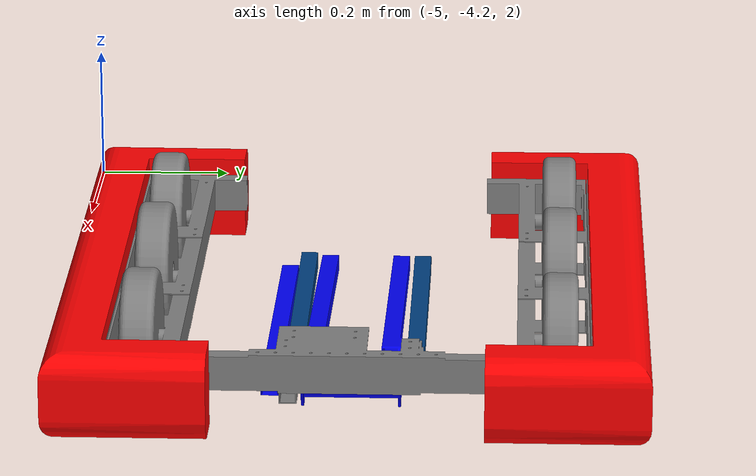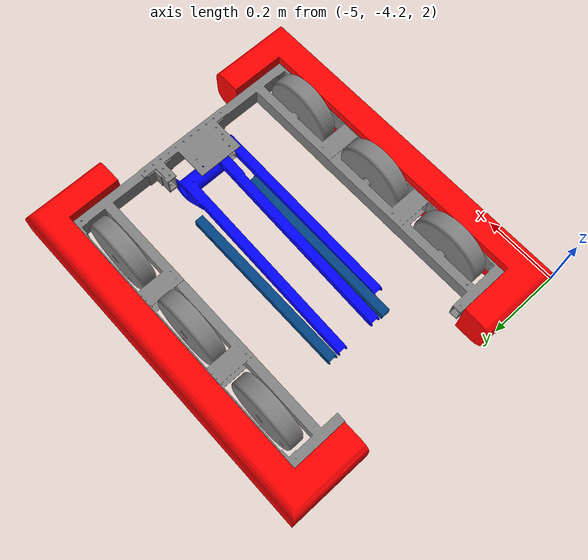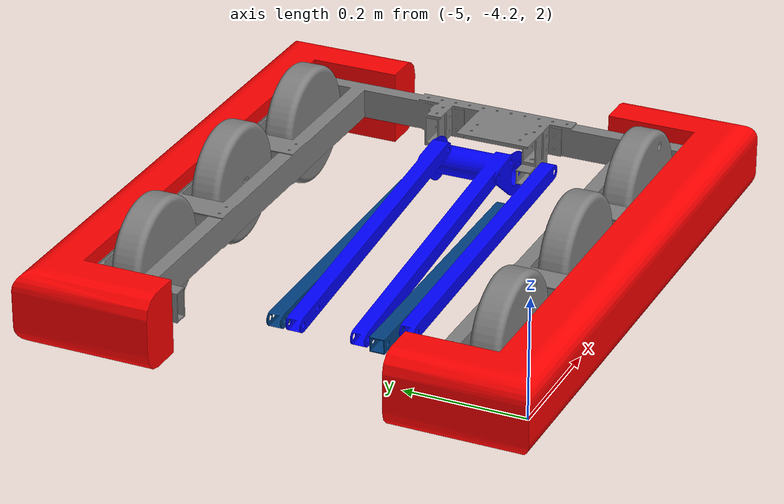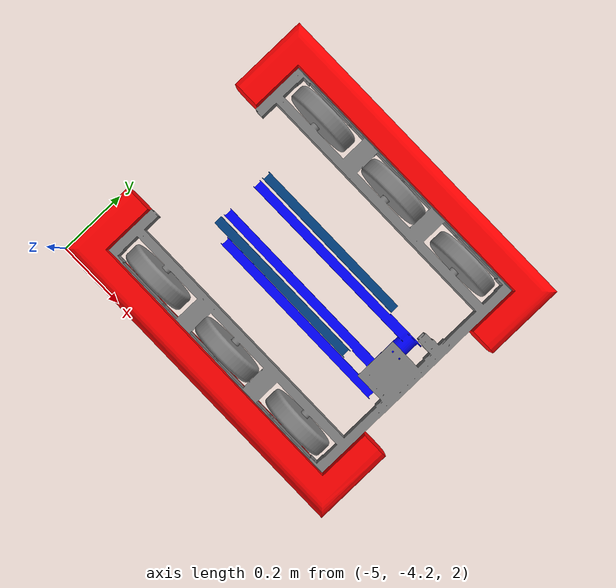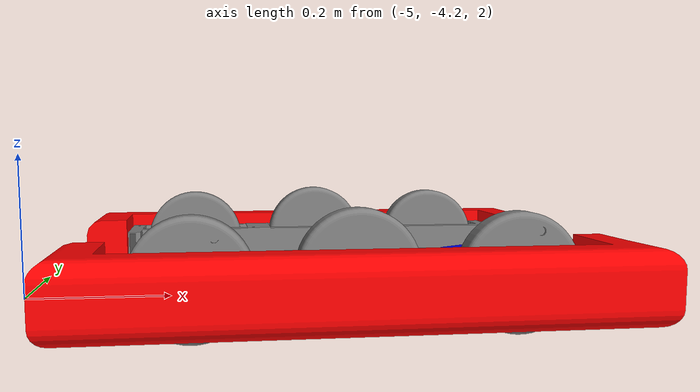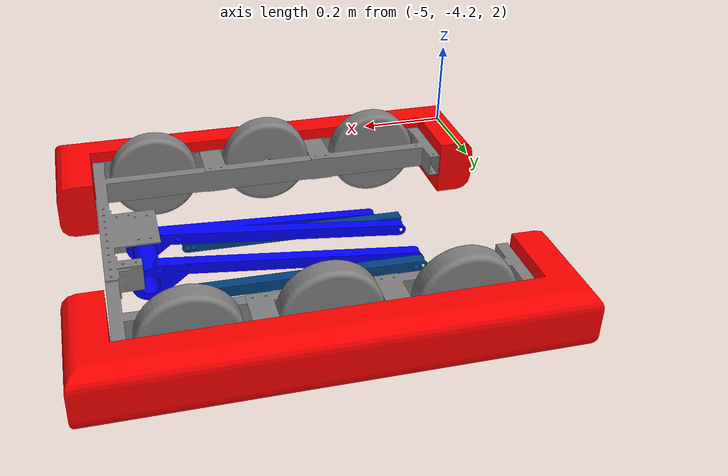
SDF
<?xml version="1.0" encoding="utf-8"?>
<sdf version="1.6">
   <model name="SimBot2019-3">
      <pose>-4.10115 -3.77117 2 0 -0 0</pose>
      <plugin name="clock" filename="libgz_clock.so">
        <topic>/gazebo/frc/time</topic>
      </plugin>
      <link name="Frame">
        <gravity>1</gravity>
        <self_collide>0</self_collide>
        <pose>-0.327678 -0.00118 0.00043 -1.5708 0 1.5708</pose>
        <must_be_base_link>1</must_be_base_link>
        <velocity_decay>
          <linear>0</linear>
          <angular>0</angular>
        </velocity_decay>
        <inertial>
          <mass>20</mass>
          <pose>0 0 0.02 0 -0 0</pose>
          <inertia>
            <ixx>0.213429</ixx>
            <ixy>1.61536e-05</ixy>
            <ixz>0.00118497</ixz>
            <iyy>0.434252</iyy>
            <iyz>0.00046367</iyz>
            <izz>0.221276</izz>
          </inertia>
        </inertial>
        <collision name="Frame_collision">
          <pose>0.00118 0.00043 0.078722 0 -0 0</pose>
          <geometry>
            <mesh>
              <scale>1 1 1</scale>
              <uri>model://SimBot2019-3/meshes/Frame_col.STL</uri>
            </mesh>
          </geometry>
          <surface>
            <contact>
              <ode/>
            </contact>
            <friction>
              <ode>
                <mu>1</mu>
                <mu2>1</mu2>
              </ode>
              <torsional>
                <ode/>
              </torsional>
            </friction>
            <bounce/>
          </surface>
          <max_contacts>10</max_contacts>
        </collision>
        <visual name="Frame_visual">
          <pose>0.00118 0.00043 0.078722 0 -0 0</pose>
          <material>
            <ambient>0.501961 0.501961 0.501961 1</ambient>
            <diffuse>0.501961 0.501961 0.501961 1</diffuse>
          </material>
          <geometry>
            <mesh>
              <scale>1 1 1</scale>
              <uri>model://SimBot2019-3/meshes/Frame.STL</uri>
            </mesh>
          </geometry>
        </visual>
        <enable_wind>0</enable_wind>
        <kinematic>0</kinematic>
      </link>
      <link name="R1Wheel">
        <gravity>1</gravity>
        <self_collide>0</self_collide>
        <pose>-0.673098 0.303263 0.001695 -1.5708 0 1.5708</pose>
        <must_be_base_link>0</must_be_base_link>
        <velocity_decay>
          <linear>0</linear>
          <angular>0</angular>
        </velocity_decay>
        <inertial>
          <mass>0.255325</mass>
          <pose>0 0 0 0 -0 0</pose>
          <inertia>
            <ixx>0</ixx>
            <ixy>0</ixy>
            <ixz>0</ixz>
            <iyy>0</iyy>
            <iyz>0</iyz>
            <izz>0</izz>
          </inertia>
        </inertial>
        <collision name="R1Wheel_collision">
          <pose>-0.303263 0.001695 -0.266698 0 -0 0</pose>
          <geometry>
            <mesh>
              <scale>1 1 1</scale>
              <uri>model://SimBot2019-3/meshes/R1Wheel_col.STL</uri>
            </mesh>
          </geometry>
          <surface>
            <contact>
              <ode/>
            </contact>
            <friction>
              <ode>
                <mu>1</mu>
                <mu2>1</mu2>
              </ode>
              <torsional>
                <ode/>
              </torsional>
            </friction>
            <bounce/>
          </surface>
          <max_contacts>10</max_contacts>
        </collision>
        <visual name="R1Wheel_visual">
          <pose>-0.303263 0.001695 -0.266698 0 -0 0</pose>
          <material>
            <ambient>0.501961 0.501961 0.501961 1</ambient>
            <diffuse>0.501961 0.501961 0.501961 1</diffuse>
          </material>
          <geometry>
            <mesh>
              <scale>1 1 1</scale>
              <uri>model://SimBot2019-3/meshes/R1Wheel.STL</uri>
            </mesh>
          </geometry>
        </visual>
        <enable_wind>0</enable_wind>
        <kinematic>0</kinematic>
      </link>
      <joint name="Frame-R1Wheel" type="revolute">
        <parent>Frame</parent>
        <child>R1Wheel</child>
        <pose>0 4.4e-05 -3e-06 0 -0 0</pose>
        <axis>
          <xyz>1 0 0</xyz>
          <dynamics>
            <damping>1</damping>
            <friction>1</friction>
            <spring_reference>0</spring_reference>
            <spring_stiffness>0</spring_stiffness>
          </dynamics>
          <limit>
            <effort>50</effort>
          </limit>
          <use_parent_model_frame>0</use_parent_model_frame>
        </axis>
      </joint>
      <link name="R2Wheel">
        <gravity>1</gravity>
        <self_collide>0</self_collide>
        <pose>-0.405313 0.303263 -0.003858 -1.5708 0 1.5708</pose>
        <must_be_base_link>0</must_be_base_link>
        <velocity_decay>
          <linear>0</linear>
          <angular>0</angular>
        </velocity_decay>
        <inertial>
          <mass>0.255325</mass>
          <pose>0 0 0 0 -0 0</pose>
          <inertia>
            <ixx>0</ixx>
            <ixy>0</ixy>
            <ixz>0</ixz>
            <iyy>0</iyy>
            <iyz>0</iyz>
            <izz>0</izz>
          </inertia>
        </inertial>
        <collision name="R2Wheel_collision">
          <pose>-0.303263 -0.003858 0.001087 0 -0 0</pose>
          <geometry>
            <mesh>
              <scale>1 1 1</scale>
              <uri>model://SimBot2019-3/meshes/R2Wheel_col.STL</uri>
            </mesh>
          </geometry>
          <surface>
            <contact>
              <ode/>
            </contact>
            <friction>
              <ode>
                <mu>1</mu>
                <mu2>1</mu2>
              </ode>
              <torsional>
                <ode/>
              </torsional>
            </friction>
            <bounce/>
          </surface>
          <max_contacts>10</max_contacts>
        </collision>
        <visual name="R2Wheel_visual">
          <pose>-0.303263 -0.003858 0.001087 0 -0 0</pose>
          <material>
            <ambient>0.501961 0.501961 0.501961 1</ambient>
            <diffuse>0.501961 0.501961 0.501961 1</diffuse>
          </material>
          <geometry>
            <mesh>
              <scale>1 1 1</scale>
              <uri>model://SimBot2019-3/meshes/R2Wheel.STL</uri>
            </mesh>
          </geometry>
        </visual>
        <enable_wind>0</enable_wind>
        <kinematic>0</kinematic>
      </link>
      <joint name="Frame-R2Wheel" type="revolute">
        <parent>Frame</parent>
        <child>R2Wheel</child>
        <pose>0 4.4e-05 -7e-06 0 -0 0</pose>
        <axis>
          <xyz>1 0 0</xyz>
          <dynamics>
            <damping>1</damping>
            <friction>1</friction>
            <spring_reference>0</spring_reference>
            <spring_stiffness>0</spring_stiffness>
          </dynamics>
          <limit>
            <effort>50</effort>

          </limit>
          <use_parent_model_frame>0</use_parent_model_frame>
        </axis>
      </joint>
      <link name="R3Wheel">
        <gravity>1</gravity>
        <self_collide>0</self_collide>
        <pose>-0.139701 0.303199 0.001695 -1.5708 0 1.5708</pose>
        <must_be_base_link>0</must_be_base_link>
        <velocity_decay>
          <linear>0</linear>
          <angular>0</angular>
        </velocity_decay>
        <inertial>
          <mass>0.255325</mass>
          <pose>0 0 0 0 -0 0</pose>
          <inertia>
            <ixx>0</ixx>
            <ixy>0</ixy>
            <ixz>0</ixz>
            <iyy>0</iyy>
            <iyz>0</iyz>
            <izz>0</izz>
          </inertia>
        </inertial>
        <collision name="R3Wheel_collision">
          <pose>-0.303199 0.001695 0.266699 0 -0 0</pose>
          <geometry>
            <mesh>
              <scale>1 1 1</scale>
              <uri>model://SimBot2019-3/meshes/R3Wheel_col.STL</uri>
            </mesh>
          </geometry>
          <surface>
            <contact>
              <ode/>
            </contact>
            <friction>
              <ode>
                <mu>1</mu>
                <mu2>1</mu2>
              </ode>
              <torsional>
                <ode/>
              </torsional>
            </friction>
            <bounce/>
          </surface>
          <max_contacts>10</max_contacts>
        </collision>
        <visual name="R3Wheel_visual">
          <pose>-0.303199 0.001695 0.266699 0 -0 0</pose>
          <material>
            <ambient>0.501961 0.501961 0.501961 1</ambient>
            <diffuse>0.501961 0.501961 0.501961 1</diffuse>
          </material>
          <geometry>
            <mesh>
              <scale>1 1 1</scale>
              <uri>model://SimBot2019-3/meshes/R3Wheel.STL</uri>
            </mesh>
          </geometry>
        </visual>
        <enable_wind>0</enable_wind>
        <kinematic>0</kinematic>
      </link>
      <joint name="Frame-R3Wheel" type="revolute">
        <parent>Frame</parent>
        <child>R3Wheel</child>
        <pose>0 4.4e-05 4e-06 0 -0 0</pose>
        <axis>
          <xyz>1 0 0</xyz>
          <dynamics>
            <damping>1</damping>
            <friction>1</friction>
            <spring_reference>0</spring_reference>
            <spring_stiffness>0</spring_stiffness>
          </dynamics>
          <limit>
            <effort>50</effort>

          </limit>
          <use_parent_model_frame>0</use_parent_model_frame>
        </axis>
      </joint>
      <link name="L1Wheel">
        <gravity>1</gravity>
        <self_collide>0</self_collide>
        <pose>-0.673097 -0.303263 0.001695 -1.5708 0 1.5708</pose>
        <must_be_base_link>0</must_be_base_link>
        <velocity_decay>
          <linear>0</linear>
          <angular>0</angular>
        </velocity_decay>
        <inertial>
          <mass>0.255325</mass>
          <pose>0 0 0 0 -0 0</pose>
          <inertia>
            <ixx>0</ixx>
            <ixy>0</ixy>
            <ixz>0</ixz>
            <iyy>0</iyy>
            <iyz>0</iyz>
            <izz>0</izz>
          </inertia>
        </inertial>
        <collision name="L1Wheel_collision">
          <pose>0.303263 0.001695 -0.266697 0 -0 0</pose>
          <geometry>
            <mesh>
              <scale>1 1 1</scale>
              <uri>model://SimBot2019-3/meshes/L1Wheel_col.STL</uri>
            </mesh>
          </geometry>
          <surface>
            <contact>
              <ode/>
            </contact>
            <friction>
              <ode>
                <mu>1</mu>
                <mu2>1</mu2>
              </ode>
              <torsional>
                <ode/>
              </torsional>
            </friction>
            <bounce/>
          </surface>
          <max_contacts>10</max_contacts>
        </collision>
        <visual name="L1Wheel_visual">
          <pose>0.303263 0.001695 -0.266697 0 -0 0</pose>
          <material>
            <ambient>0.501961 0.501961 0.501961 1</ambient>
            <diffuse>0.501961 0.501961 0.501961 1</diffuse>
          </material>
          <geometry>
            <mesh>
              <scale>1 1 1</scale>
              <uri>model://SimBot2019-3/meshes/L1Wheel.STL</uri>
            </mesh>
          </geometry>
        </visual>
        <enable_wind>0</enable_wind>
        <kinematic>0</kinematic>
      </link>
      <joint name="Frame-L1Wheel" type="revolute">
        <parent>Frame</parent>
        <child>L1Wheel</child>
        <pose>0 4.4e-05 -1e-06 0 -0 0</pose>
        <axis>
          <xyz>1 0 0</xyz>
          <dynamics>
            <damping>1</damping>
            <friction>1</friction>
            <spring_reference>0</spring_reference>
            <spring_stiffness>0</spring_stiffness>
          </dynamics>
          <limit>
            <effort>50</effort>

          </limit>
          <use_parent_model_frame>0</use_parent_model_frame>
        </axis>
      </joint>
      <link name="L2Wheel">
        <gravity>1</gravity>
        <self_collide>0</self_collide>
        <pose>-0.406431 -0.303369 -0.003683 -1.5708 0 1.5708</pose>
        <must_be_base_link>0</must_be_base_link>
        <velocity_decay>
          <linear>0</linear>
          <angular>0</angular>
        </velocity_decay>
        <inertial>
          <mass>0.255325</mass>
          <pose>0 0 0 0 -0 0</pose>
          <inertia>
            <ixx>0</ixx>
            <ixy>0</ixy>
            <ixz>0</ixz>
            <iyy>0</iyy>
            <iyz>0</iyz>
            <izz>0</izz>
          </inertia>
        </inertial>
        <collision name="L2Wheel_collision">
          <pose>0.303369 -0.003683 -3.1e-05 0 -0 0</pose>
          <geometry>
            <mesh>
              <scale>1 1 1</scale>
              <uri>model://SimBot2019-3/meshes/L2Wheel_col.STL</uri>
            </mesh>
          </geometry>
          <surface>
            <contact>
              <ode/>
            </contact>
            <friction>
              <ode>
                <mu>1</mu>
                <mu2>1</mu2>
              </ode>
              <torsional>
                <ode/>
              </torsional>
            </friction>
            <bounce/>
          </surface>
          <max_contacts>10</max_contacts>
        </collision>
        <visual name="L2Wheel_visual">
          <pose>0.303369 -0.003683 -3.1e-05 0 -0 0</pose>
          <material>
            <ambient>0.501961 0.501961 0.501961 1</ambient>
            <diffuse>0.501961 0.501961 0.501961 1</diffuse>
          </material>
          <geometry>
            <mesh>
              <scale>1 1 1</scale>
              <uri>model://SimBot2019-3/meshes/L2Wheel.STL</uri>
            </mesh>
          </geometry>
        </visual>
        <enable_wind>0</enable_wind>
        <kinematic>0</kinematic>
      </link>
      <joint name="Frame-L2Wheel" type="revolute">
        <parent>Frame</parent>
        <child>L2Wheel</child>
        <pose>0 4.1e-05 1.7e-05 0 -0 0</pose>
        <axis>
          <xyz>1 0 0</xyz>
          <dynamics>
            <damping>1</damping>
            <friction>1</friction>
            <spring_reference>0</spring_reference>
            <spring_stiffness>0</spring_stiffness>
          </dynamics>
          <limit>
            <effort>50</effort>

          </limit>
          <use_parent_model_frame>0</use_parent_model_frame>
        </axis>
      </joint>
      <link name="L3Wheel">
        <gravity>1</gravity>
        <self_collide>0</self_collide>
        <pose>-0.139685 -0.303263 0.001691 -1.5708 0 1.5708</pose>
        <must_be_base_link>0</must_be_base_link>
        <velocity_decay>
          <linear>0</linear>
          <angular>0</angular>
        </velocity_decay>
        <inertial>
          <mass>0.255325</mass>
          <pose>0 0 0 0 -0 0</pose>
          <inertia>
            <ixx>0</ixx>
            <ixy>0</ixy>
            <ixz>0</ixz>
            <iyy>0</iyy>
            <iyz>0</iyz>
            <izz>0</izz>
          </inertia>
        </inertial>
        <collision name="L3Wheel_collision">
          <pose>0.303263 0.001691 0.266715 0 -0 0</pose>
          <geometry>
            <mesh>
              <scale>1 1 1</scale>
              <uri>model://SimBot2019-3/meshes/L3Wheel_col.STL</uri>
            </mesh>
          </geometry>
          <surface>
            <contact>
              <ode/>
            </contact>
            <friction>
              <ode>
                <mu>0</mu>
                <mu2>0</mu2>
              </ode>
              <torsional>
                <ode/>
              </torsional>
            </friction>
            <bounce/>
          </surface>
          <max_contacts>10</max_contacts>
        </collision>
        <visual name="L3Wheel_visual">
          <pose>0.303263 0.001691 0.266715 0 -0 0</pose>
          <material>
            <ambient>0.501961 0.501961 0.501961 1</ambient>
            <diffuse>0.501961 0.501961 0.501961 1</diffuse>
          </material>
          <geometry>
            <mesh>
              <scale>1 1 1</scale>
              <uri>model://SimBot2019-3/meshes/L3Wheel.STL</uri>
            </mesh>
          </geometry>
        </visual>
        <enable_wind>0</enable_wind>
        <kinematic>0</kinematic>
      </link>
      <joint name="Frame-L3Wheel" type="revolute">
        <parent>Frame</parent>
        <child>L3Wheel</child>
        <pose>0 4e-05 2e-05 0 -0 0</pose>
        <axis>
          <xyz>1 0 0</xyz>
          <dynamics>
            <damping>1</damping>
            <friction>1</friction>
            <spring_reference>0</spring_reference>
            <spring_stiffness>0</spring_stiffness>
          </dynamics>
          <limit>
            <effort>50</effort>
          </limit>
          <use_parent_model_frame>0</use_parent_model_frame>
        </axis>
      </joint>
      <link name="Climber1">
        <gravity>1</gravity>
        <self_collide>0</self_collide>
        <pose>-0.320135 -0.02773 -0.04306 -1.5708 0 1.5708</pose>
        <must_be_base_link>0</must_be_base_link>
        <velocity_decay>
          <linear>0</linear>
          <angular>0</angular>
        </velocity_decay>
        <inertial>
          <mass>0.858974</mass>
          <pose>0 0 0 0 -0 0</pose>
          <inertia>
            <ixx>0.0102423</ixx>
            <ixy>0.000313228</ixy>
            <ixz>0.00047989</ixz>
            <iyy>0.0142925</iyy>
            <iyz>0.000144991</iyz>
            <izz>0.00414349</izz>
          </inertia>
        </inertial>
        <collision name="Climber1_collision">
          <pose>0.02773 -0.04306 0.086265 0 -0 0</pose>
          <geometry>
            <mesh>
              <scale>1 1 1</scale>
              <uri>model://SimBot2019-3/meshes/Climber1_col.STL</uri>
            </mesh>
          </geometry>
          <surface>
            <contact>
              <ode/>
            </contact>
            <friction>
              <ode>
                <mu>0.5</mu>
                <mu2>0.5</mu2>
              </ode>
              <torsional>
                <ode/>
              </torsional>
            </friction>
            <bounce/>
          </surface>
          <max_contacts>10</max_contacts>
        </collision>
        <visual name="Climber1_visual">
          <pose>0.02773 -0.04306 0.086265 0 -0 0</pose>
          <material>
            <ambient>0 0 1 1</ambient>
            <diffuse>0 0 1 1</diffuse>
          </material>
          <geometry>
            <mesh>
              <scale>1 1 1</scale>
              <uri>model://SimBot2019-3/meshes/Climber1.STL</uri>
            </mesh>
          </geometry>
        </visual>
        <enable_wind>0</enable_wind>
        <kinematic>0</kinematic>
      </link>
      <joint name="Frame-Climber1" type="revolute">
        <parent>Frame</parent>
        <child>Climber1</child>
        <pose>-0 -0.001785 -0.262043 0 -0 3.14159</pose>
        <axis>
          <xyz>1 0 0</xyz>
          <dynamics>
            <damping>1</damping>
            <friction>1</friction>
            <spring_reference>0</spring_reference>
            <spring_stiffness>0</spring_stiffness>
          </dynamics>
          <limit>
            <upper>2.4</upper>
            <lower>-0.1</lower>
            <effort>100</effort>
          </limit>
          <use_parent_model_frame>0</use_parent_model_frame>
        </axis>
      </joint>
      <link name="Climber2">
        <gravity>1</gravity>
        <self_collide>0</self_collide>
        <pose>-0.425765 0.003625 -0.065946 -1.5708 0 1.5708</pose>
        <must_be_base_link>0</must_be_base_link>
        <velocity_decay>
          <linear>0</linear>
          <angular>0</angular>
        </velocity_decay>
        <inertial>
          <mass>0.403193</mass>
          <pose>0 0 0 0 -0 0</pose>
          <inertia>
            <ixx>4.132e-06</ixx>
            <ixy>1.20232e-06</ixy>
            <ixz>0.00011474</ixz>
            <iyy>0.00319065</iyy>
            <iyz>4.3293e-08</iyz>
            <izz>0.00318652</izz>
          </inertia>
        </inertial>
        <collision name="Climber2_collision">
          <pose>-0.003625 -0.065946 -0.019365 0 -0 0</pose>
          <geometry>
            <mesh>
              <scale>1 1 1</scale>
              <uri>model://SimBot2019-3/meshes/Climber2_col.STL</uri>
            </mesh>
          </geometry>
          <surface>
            <contact>
              <ode/>
            </contact>
            <friction>
              <ode>
                <mu>1</mu>
                <mu2>1</mu2>
              </ode>
              <torsional>
                <ode/>
              </torsional>
            </friction>
            <bounce/>
          </surface>
          <max_contacts>10</max_contacts>
        </collision>
        <visual name="Climber2_visual">
          <pose>-0.003625 -0.065946 -0.019365 0 -0 0</pose>
          <material>
            <ambient>0 0.25098 0.501961 1</ambient>
            <diffuse>0 0.25098 0.501961 1</diffuse>
          </material>
          <geometry>
            <mesh>
              <scale>1 1 1</scale>
              <uri>model://SimBot2019-3/meshes/Climber2.STL</uri>
            </mesh>
          </geometry>
        </visual>
        <enable_wind>0</enable_wind>
        <kinematic>0</kinematic>
      </link>
      <joint name="Climber1-Climber2" type="revolute">
        <parent>Climber1</parent>
        <child>Climber2</child>
        <pose>0 0.002528 0.241287 0 -0 3.0909</pose>
        <axis>
          <xyz>-0.998716 -0.050667 -0</xyz>
          <dynamics>
            <damping>1</damping>
            <friction>1</friction>
            <spring_reference>0</spring_reference>
            <spring_stiffness>0</spring_stiffness>
          </dynamics>
          <limit>
            <upper>2.4</upper>
            <lower>-0.1</lower>
            <effort>100</effort>
          </limit>
          <use_parent_model_frame>0</use_parent_model_frame>
        </axis>
      </joint>
    <link name="Bumpers">
      <gravity>1</gravity>
      <self_collide>0</self_collide>
      <pose>-0.409584647856141 4.15478934425978E-15 -0.000359091198846842 -1.5707963267949 0 1.5707963267949</pose>
      <must_be_base_link>0</must_be_base_link>
      <velocity_decay>
        <linear>0</linear>
        <angular>0</angular>
      </velocity_decay>
      <inertial>
        <mass>1.413207943277132</mass>
        <pose>0 0 0 0 0 0</pose>
        <inertia>
          <ixx>0</ixx>
          <ixy>0.000220051172388853</ixy>
          <ixz>0</ixz>
          <iyy>0.0540058256034707</iyy>
          <iyz>0</iyz>
          <izz>0.0540067222200473</izz>
        </inertia>
      </inertial>
      <collision name="Bumpers_collision">
        <pose>-4.06384328294321E-15 -0.00035909119884693 -0.00318463845622289 0 0 0</pose>
        <geometry>
          <mesh>
            <scale>1 1 1</scale>
            <uri>model://SimBot2019-3/meshes/Bumpers_col.STL</uri>
          </mesh>
        </geometry>
        <surface>
          <contact>
            <ode />
          </contact>
          <friction>
            <ode>
              <mu>1</mu>
              <mu2>1</mu2>
            </ode>
          </friction>
        </surface>
      </collision>
      <visual name="Bumpers_visual">
        <pose>-4.06384328294321E-15 -0.00035909119884693 -0.00318463845622289 0 0 0</pose>
        <material>
          <ambient>1 0 0 1</ambient>
          <diffuse>1 0 0 1</diffuse>
        </material>
        <geometry>
          <mesh>
            <scale>1 1 1</scale>
            <uri>model://SimBot2019-3/meshes/Bumpers.STL</uri>
          </mesh>
        </geometry>
      </visual>
    </link>
    <joint name="Frame-Bumpers" type="fixed">
      <parent>Frame</parent>
      <child>Bumpers</child>
      <pose>0.190499999999996 7.58941520739853E-19 0.377815370943695 0 0 0</pose>
      <axis>
        <xyz>0 1 0</xyz>
        <dynamics>
          <damping>0</damping>
          <friction>0</friction>
        </dynamics>
        <limit>
          <upper>0</upper>
          <lower>0</lower>
          <effort>1</effort>
        </limit>
      </axis>
    </joint>

      <plugin name="Frame-R1Wheel_motor" filename="libgz_dc_motor.so">
        <joint>Frame-R1Wheel</joint>
        <topic>/gazebo/frc/simulator/pwm/1</topic>
        <multiplier>10</multiplier>
      </plugin>
      <plugin name="Frame-R2Wheel_motor" filename="libgz_dc_motor.so">
        <joint>Frame-R2Wheel</joint>
        <topic>/gazebo/frc/simulator/pwm/1</topic>
        <multiplier>10</multiplier>
      </plugin>
      <plugin name="Frame-R3Wheel_motor" filename="libgz_dc_motor.so">
        <joint>Frame-R3Wheel</joint>
        <topic>/gazebo/frc/simulator/pwm/3</topic>
        <multiplier>10</multiplier>
      </plugin>
      <plugin name="Frame-L1Wheel_motor" filename="libgz_dc_motor.so">
        <joint>Frame-L1Wheel</joint>
        <topic>/gazebo/frc/simulator/pwm/4</topic>
        <multiplier>10</multiplier>
      </plugin>
      <plugin name="Frame-L2Wheel_motor" filename="libgz_dc_motor.so">
        <joint>Frame-L2Wheel</joint>
        <topic>/gazebo/frc/simulator/pwm/4</topic>
        <multiplier>10</multiplier>
      </plugin>
      <plugin name="Frame-L3Wheel_motor" filename="libgz_dc_motor.so">
        <joint>Frame-L3Wheel</joint>
        <topic>/gazebo/frc/simulator/pwm/4</topic>
        <multiplier>10</multiplier>
      </plugin>
      <plugin name="Frame-Climber1_motor" filename="libgz_dc_motor.so">
        <joint>Frame-Climber1</joint>
        <topic>/gazebo/frc/simulator/pwm/6</topic>
        <multiplier>100</multiplier>
      </plugin>
      <plugin name="Climber1-Climber2_motor" filename="libgz_dc_motor.so">
        <joint>Climber1-Climber2</joint>
        <topic>/gazebo/frc/simulator/pwm/6</topic>
        <multiplier>100</multiplier>
      </plugin>
    </model>
</sdf>
